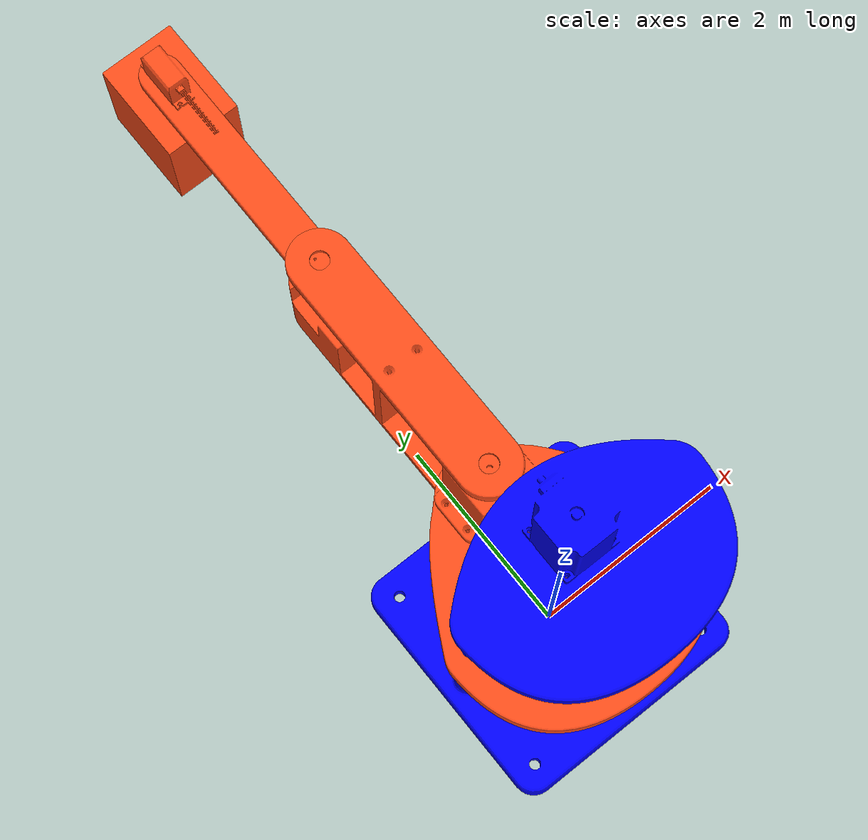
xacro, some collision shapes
<?xml version="1.0"?>
<robot xmlns:xacro="http://www.ros.org/wiki/xacro" name="robot">

    <!-- Material Definitions -->
    <material name="grey">
        <color rgba="0.2 0.2 0.2 1"/>
    </material>

    <material name="white">
        <color rgba="1 1 1 1"/>
    </material>

    <material name="orange">
        <color rgba="1 0.3 0.1 1"/>
    </material>

    <material name="blue">
        <color rgba="0 0 1 1"/>

    </material>

    <link name="world" />

    <!-- base Joint -->
    <link name="base">
        <visual>
            <origin xyz="0 0 0" rpy="1.570796326795 0 0" />
            <geometry>
                <mesh filename="package://robu/urdf/Z_Achse.stl" scale="0.01 0.01 0.01" />
            </geometry>
            <material name="blue" />
        </visual>
        <collision>
            <origin xyz="0 0 2.1" rpy="1.570796326795 0 0" />
            <geometry>
                <box size="2.5 4.2 2.5" />
            </geometry>
        </collision>
        <inertial>

            <origin xyz="0 0 0.05" rpy="0 0 0"/>

            <mass value="12" />

            <inertia ixx="2.26" ixy="0.0" ixz="0.0" iyy="6.26" iyz="0.0" izz="8.5" />

        </inertial>
    </link>

    <joint name="base_to_world" type="fixed">
        <parent link="world" />
        <child link="base" />
        <origin xyz="0 0 0" rpy="0 0 0"  />
    </joint>

    <!-- Z.Achse Segment Joint-->
    <link name="z_achse">
        <visual>
            <origin xyz="0 0 0 " rpy="4.712388980385 3.14159265359 4.712388980385" />
            <geometry>
                <mesh filename="package://robu/urdf/1_Arm.stl" scale="0.01 0.01 0.01" />
            </geometry>
            <material name="orange" />
        </visual>
        <!-- -> Keine Collissions weil das Bauteil in der Z-Achse ist. -->
        <inertial>

            <origin xyz="0 0 0.05" rpy="0 0 0"/>

            <mass value="12" />

            <inertia ixx="2.26" ixy="0.0" ixz="0.0" iyy="6.26" iyz="0.0" izz="8.5" />

        </inertial>
    </link>

    <joint name="z_Achse_to_base" type="prismatic">
        <parent link="base" />
        <child link="z_achse" />
        <origin xyz="0 0 0" rpy="0 0 0"  />
        <axis xyz="0 0 1"/>
        <limit lower="0.5" upper="3.03" effort="100" velocity="0.1"/>
    </joint>

    <!-- 1 Arm Segment Joint-->
    <link name="1_arm">
        <visual>
            <origin xyz="0 0 0 " rpy="4.712388980385 3.14159265359 4.712388980385" />
            <geometry>
                <mesh filename="package://robu/urdf/2_Arm.stl" scale="0.01 0.01 0.01" />
            </geometry>
            <material name="orange" />
        </visual>
        <collision>
            <origin xyz="0 1 0.65" rpy="1.570796326795 0 0" />
            <geometry>
                <box size="1 1.35 3.25" />
            </geometry>
        </collision>
        <inertial>

            <origin xyz="0 0 0.05" rpy="0 0 0"/>

            <mass value="12" />

            <inertia ixx="2.26" ixy="0.0" ixz="0.0" iyy="6.26" iyz="0.0" izz="8.5" />

        </inertial>
    </link>

    <joint name="z_achse_to_1_arm" type="revolute">
        <parent link="z_achse" />
        <child link="1_arm" />
        <origin xyz="0 1 -.35" rpy="0 0 0"  />
        <axis xyz="0 0 1"/>
        <limit lower="-1.5" upper="1.5" effort="100" velocity="0.1"/>
    </joint>

    <!-- 2 Arm Segment Joint-->
    <link name="2_arm">
        <visual>
            <origin xyz="0 0 0 " rpy="4.712388980385 0 4.712388980385" />
            <geometry>
                <mesh filename="package://robu/urdf/3_Arm.stl" scale="0.01 0.01 0.01" />
            </geometry>
            <material name="orange" />
        </visual>
        <collision>
            <origin xyz="0 1.4 .2" rpy="1.570796326795 0 0" />
            <geometry>
                <box size="1 .7 2.5" />
            </geometry>
        </collision>
        <inertial>

            <origin xyz="0 0 0.05" rpy="0 0 0"/>

            <mass value="12" />

            <inertia ixx="2.26" ixy="0.0" ixz="0.0" iyy="6.26" iyz="0.0" izz="8.5" />

        </inertial>
    </link>

    <joint name="1_achse_to_2_arm" type="revolute">
        <parent link="1_arm" />
        <child link="2_arm" />
        <origin xyz="0 2.3 1.15" rpy="0 0 0"  />
        <axis xyz="0 0 1"/>
        <limit lower="-2" upper="2" effort="100" velocity="0.1"/>
    </joint>

    <!-- greifer Segment Joint-->
    <link name="greifer">
        <visual>
            <origin xyz="0 0 0 " rpy="1.570796326795 0 4.712388980385" />
            <geometry>
                <mesh filename="package://robu/urdf/Greiferneu.stl" scale="0.01 0.01 0.01" />
            </geometry>
            <material name="orange" />
        </visual>
        <collision>
            <origin xyz="0 0 -0.47" rpy="1.570796326795 0 0" />
            <geometry>
                <box size=".75 1 1" />
            </geometry>
        </collision>
        <inertial>

            <origin xyz="0 0 0.05" rpy="0 0 0"/>

            <mass value="12" />

            <inertia ixx="2.26" ixy="0.0" ixz="0.0" iyy="6.26" iyz="0.0" izz="8.5" />

        </inertial>
    </link>

    <joint name="2_achse_to_greifer" type="continuous">
        <parent link="2_arm" />
        <child link="greifer" />
        <origin xyz="0 2.2 -0.19" rpy="0 0 0"  />
        <axis xyz="0 0 1"/>
    </joint>

    <xacro:include filename="example_gazebo.xacro" />
</robot>
